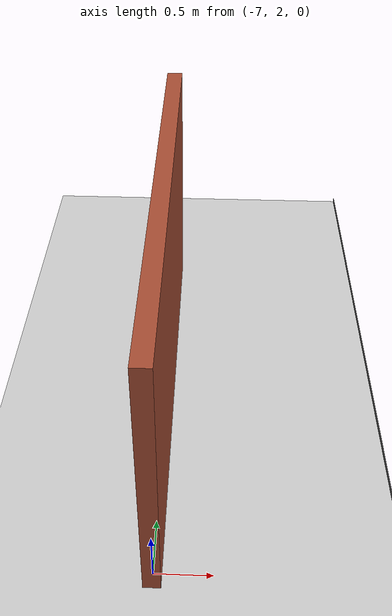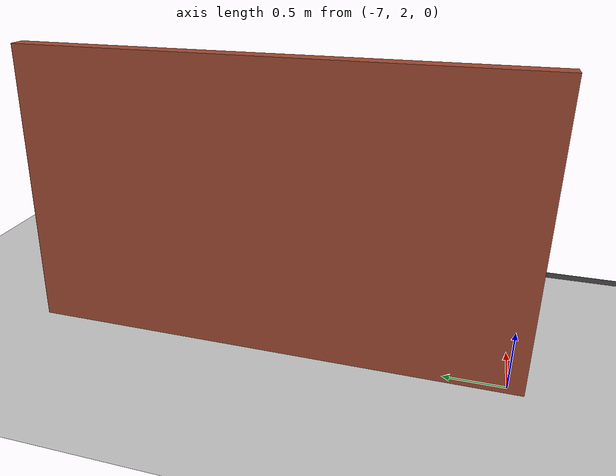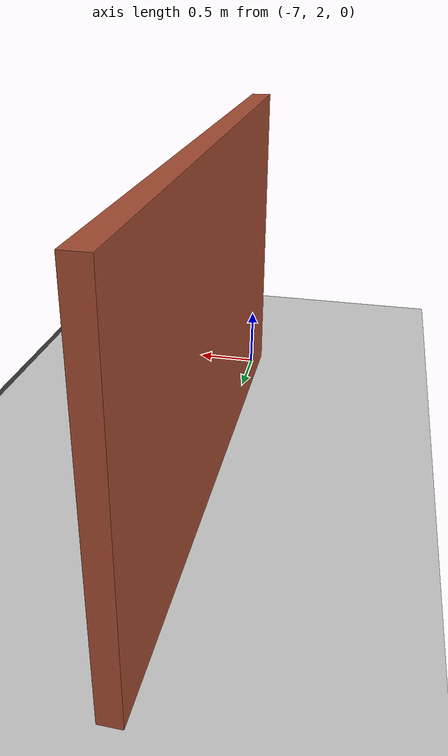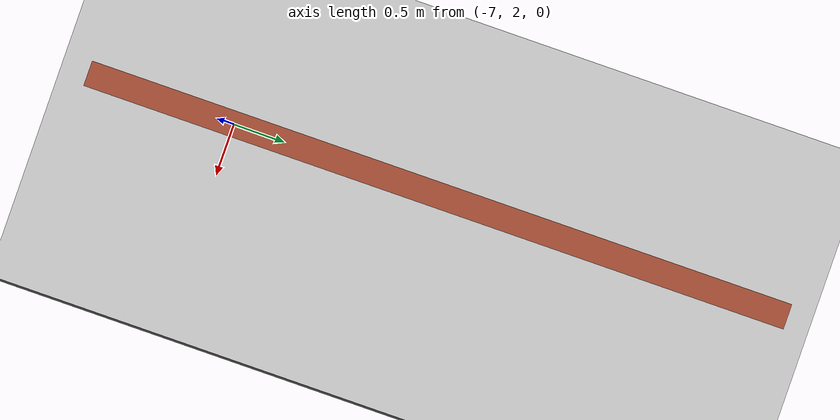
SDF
<sdf version="1.6">
 <world name="default">
  <model name="ground_plane">
   <static>1</static>
   <link name="link">
    <collision name="collision">
     <geometry><plane><normal>0 0 1</normal><size>100 100</size></plane></geometry>
     <surface><friction><ode><mu>100</mu><mu2>50</mu2></ode></friction></surface>
    </collision>
    <visual name="visual">
     <cast_shadows>0</cast_shadows>
     <geometry><plane><normal>0 0 1</normal><size>100 100</size></plane></geometry>
     <material>
      <script><uri>file://media/materials/scripts/gazebo.material</uri><name>Gazebo/Grey</name></script>
     </material>
    </visual>
   </link>
  </model>
  <model name="asphalt_plane">
   <static>1</static>
   <link name="link">
    <collision name="collision"><geometry><box><size>20 20 0.1</size></box></geometry></collision>
    <visual name="visual">
     <cast_shadows>0</cast_shadows>
     <geometry><box><size>20 20 0.1</size></box></geometry>
     <material>
      <script>
       <uri>model://asphalt_plane/materials/scripts</uri>
       <uri>model://asphalt_plane/materials/textures</uri>
       <name>vrc/asphalt</name>
      </script>
     </material>
    </visual>
   </link>
   <pose>10 10 0 0 -0 0</pose>
  </model>
  <model name="worlds_1_clone_1_clone_7_clone">
   <pose>-7 4 0 0 -0 0</pose>
   <link name="brick_longwall_wall_0">
    <collision name="brick_longwall_wall_0_Collision">
     <geometry><box><size>4.25 0.15 2.5</size></box></geometry>
     <pose>0 0 1.25 0 -0 0</pose>
    </collision>
    <visual name="brick_longwall_wall_0_Visual">
     <pose>0 0 1.25 0 -0 0</pose>
     <geometry><box><size>4.25 0.15 2.5</size></box></geometry>
     <material>
      <script><uri>file://media/materials/scripts/gazebo.material</uri><name>Gazebo/Bricks</name></script>
      <ambient>1 1 1 1</ambient>
     </material>
    </visual>
    <pose>0 -0 0 0 -0 1.5708</pose>
   </link>
   <static>1</static>
  </model>
 </world>
</sdf>
